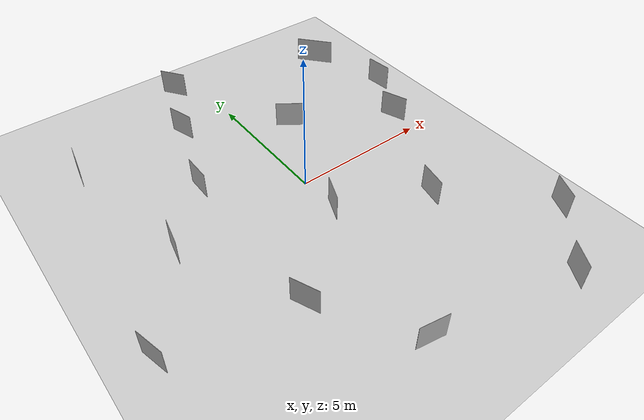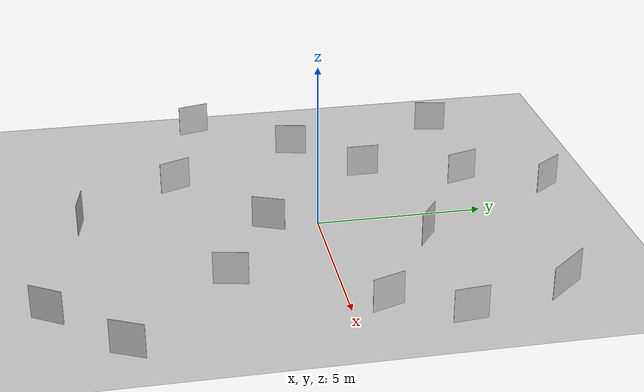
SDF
<sdf version="1.6">
 <world name="default">
  <light name="sun" type="directional">
   <pose>0 0 10 0 -0 0</pose>
   <diffuse>0.8 0.8 0.8 1</diffuse>
   <specular>0.1 0.1 0.1 1</specular>
   <attenuation>
    <range>1000</range>
    <constant>0.9</constant>
    <linear>0.01</linear>
    <quadratic>0.001</quadratic>
   </attenuation>
   <direction>-0.5 0.5 -1</direction>
  </light>
  <model name="ground_plane">
   <static>1</static>
   <link name="link">
    <collision name="collision">
     <geometry><plane><normal>0 0 1</normal><size>100 100</size></plane></geometry>
     <surface><friction><ode><mu>100</mu><mu2>50</mu2></ode></friction></surface>
    </collision>
    <visual name="visual">
     <cast_shadows>0</cast_shadows>
     <geometry><plane><normal>0 0 1</normal><size>100 100</size></plane></geometry>
     <material>
      <script><uri>file://media/materials/scripts/gazebo.material</uri><name>Gazebo/Grey</name></script>
     </material>
    </visual>
   </link>
  </model>
  <gravity>0 0 -9.8</gravity>
  <magnetic_field>6e-06 2.3e-05 -4.2e-05</magnetic_field>
  <atmosphere type="adiabatic"/>
  <physics name="default_physics" default="0" type="ode">
   <max_step_size>0.001</max_step_size>
   <real_time_factor>1</real_time_factor>
   <real_time_update_rate>1000</real_time_update_rate>
  </physics>
  <scene><ambient>0.4 0.4 0.4 1</ambient><background>0.7 0.7 0.7 1</background><shadows>1</shadows></scene>
  <spherical_coordinates>
   <surface_model>EARTH_WGS84</surface_model>
   <latitude_deg>0</latitude_deg>
   <longitude_deg>0</longitude_deg>
   <elevation>0</elevation>
   <heading_deg>0</heading_deg>
  </spherical_coordinates>
  <light name="sun_0" type="directional">
   <pose>8.42474 9.70985 10 0 -0 0</pose>
   <diffuse>0.8 0.8 0.8 1</diffuse>
   <specular>0.1 0.1 0.1 1</specular>
   <attenuation>
    <range>1000</range>
    <constant>0.9</constant>
    <linear>0.01</linear>
    <quadratic>0.001</quadratic>
   </attenuation>
   <direction>-0.5 0.5 -1</direction>
  </light>
  <model name="Apriltag36_11_00001">
   <link name="main">
    <visual name="main_Visual">
     <geometry><box><size>1 1 0.01</size></box></geometry>
     <material>
      <script>
       <uri>model://Apriltag36_11_00001/materials/scripts</uri>
       <uri>model://Apriltag36_11_00001/materials/textures</uri>
       <name>Apriltag36_11_00001</name>
      </script>
     </material>
    </visual>
    <collision name="main_collision"><geometry><box><size>1 1 0.01</size></box></geometry></collision>
   </link>
   <static>1</static>
   <pose>3 -3 0.5 3.14159 1.57079 2.94159</pose>
  </model>
  <model name="Apriltag36_11_00002">
   <link name="main">
    <visual name="main_Visual">
     <geometry><box><size>1 1 0.01</size></box></geometry>
     <material>
      <script>
       <uri>model://Apriltag36_11_00002/materials/scripts</uri>
       <uri>model://Apriltag36_11_00002/materials/textures</uri>
       <name>Apriltag36_11_00002</name>
      </script>
     </material>
    </visual>
    <collision name="main_collision"><geometry><box><size>1 1 0.01</size></box></geometry></collision>
   </link>
   <static>1</static>
   <pose>4 -8 0.5 3.09484 1.57079 2.54484</pose>
  </model>
  <model name="Apriltag36_11_00003">
   <link name="main">
    <visual name="main_Visual">
     <geometry><box><size>1 1 0.01</size></box></geometry>
     <material>
      <script>
       <uri>model://Apriltag36_11_00003/materials/scripts</uri>
       <uri>model://Apriltag36_11_00003/materials/textures</uri>
       <name>Apriltag36_11_00003</name>
      </script>
     </material>
    </visual>
    <collision name="main_collision"><geometry><box><size>1 1 0.01</size></box></geometry></collision>
   </link>
   <static>1</static>
   <pose>1.5 3 0.5 3.13024 1.57079 -2.20295</pose>
  </model>
  <model name="Apriltag36_11_00004">
   <link name="main">
    <visual name="main_Visual">
     <geometry><box><size>1 1 0.01</size></box></geometry>
     <material>
      <script>
       <uri>model://Apriltag36_11_00004/materials/scripts</uri>
       <uri>model://Apriltag36_11_00004/materials/textures</uri>
       <name>Apriltag36_11_00004</name>
      </script>
     </material>
    </visual>
    <collision name="main_collision"><geometry><box><size>1 1 0.01</size></box></geometry></collision>
   </link>
   <static>1</static>
   <pose>5 1 0.5 2.96659 1.57079 -2.96659</pose>
  </model>
  <model name="Apriltag36_11_00005">
   <link name="main">
    <visual name="main_Visual">
     <geometry><box><size>1 1 0.01</size></box></geometry>
     <material>
      <script>
       <uri>model://Apriltag36_11_00005/materials/scripts</uri>
       <uri>model://Apriltag36_11_00005/materials/textures</uri>
       <name>Apriltag36_11_00005</name>
      </script>
     </material>
    </visual>
    <collision name="main_collision"><geometry><box><size>1 1 0.01</size></box></geometry></collision>
   </link>
   <static>1</static>
   <pose>-3 -4 0.5 -3.01984 1.57079 -2.61984</pose>
  </model>
  <model name="Apriltag36_11_00006">
   <link name="main">
    <visual name="main_Visual">
     <geometry><box><size>1 1 0.01</size></box></geometry>
     <material>
      <script>
       <uri>model://Apriltag36_11_00006/materials/scripts</uri>
       <uri>model://Apriltag36_11_00006/materials/textures</uri>
       <name>Apriltag36_11_00006</name>
      </script>
     </material>
    </visual>
    <collision name="main_collision"><geometry><box><size>1 1 0.01</size></box></geometry></collision>
   </link>
   <static>1</static>
   <pose>-1 -7 0.5 -2.4794 1.57079 2.05352</pose>
  </model>
  <model name="Apriltag36_11_00007">
   <link name="main">
    <visual name="main_Visual">
     <geometry><box><size>1 1 0.01</size></box></geometry>
     <material>
      <script>
       <uri>model://Apriltag36_11_00007/materials/scripts</uri>
       <uri>model://Apriltag36_11_00007/materials/textures</uri>
       <name>Apriltag36_11_00007</name>
      </script>
     </material>
    </visual>
    <collision name="main_collision"><geometry><box><size>1 1 0.01</size></box></geometry></collision>
   </link>
   <static>1</static>
   <pose>-1 7.5 0.499999 1.5083 1.57079 -1.01834</pose>
  </model>
  <model name="Apriltag36_11_00008">
   <link name="main">
    <visual name="main_Visual">
     <geometry><box><size>1 1 0.01</size></box></geometry>
     <material>
      <script>
       <uri>model://Apriltag36_11_00008/materials/scripts</uri>
       <uri>model://Apriltag36_11_00008/materials/textures</uri>
       <name>Apriltag36_11_00008</name>
      </script>
     </material>
    </visual>
    <collision name="main_collision"><geometry><box><size>1 1 0.01</size></box></geometry></collision>
   </link>
   <static>1</static>
   <pose>6 -6 0.5 -2.91659 1.57079 2.91659</pose>
  </model>
  <model name="Apriltag36_11_00009">
   <link name="main">
    <visual name="main_Visual">
     <geometry><box><size>1 1.4625 0.01</size></box></geometry>
     <material>
      <script>
       <uri>model://Apriltag36_11_00009/materials/scripts</uri>
       <uri>model://Apriltag36_11_00009/materials/textures</uri>
       <name>Apriltag36_11_00009</name>
      </script>
     </material>
    </visual>
    <collision name="main_collision"><geometry><box><size>1 1.4625 0.01</size></box></geometry></collision>
   </link>
   <static>1</static>
   <pose>5 6 0.499994 3.03657 1.57079 -2.54661</pose>
  </model>
  <model name="Apriltag36_11_00010">
   <link name="main">
    <visual name="main_Visual">
     <geometry><box><size>1 1 0.01</size></box></geometry>
     <material>
      <script>
       <uri>model://Apriltag36_11_00010/materials/scripts</uri>
       <uri>model://Apriltag36_11_00010/materials/textures</uri>
       <name>Apriltag36_11_00010</name>
      </script>
     </material>
    </visual>
    <collision name="main_collision"><geometry><box><size>1 1 0.01</size></box></geometry></collision>
   </link>
   <static>1</static>
   <pose>6 3 0.500014 2.84661 1.57079 2.94661</pose>
  </model>
  <model name="Apriltag36_11_00011">
   <link name="main">
    <visual name="main_Visual">
     <geometry><box><size>1 1 0.01</size></box></geometry>
     <material>
      <script>
       <uri>model://Apriltag36_11_00011/materials/scripts</uri>
       <uri>model://Apriltag36_11_00011/materials/textures</uri>
       <name>Apriltag36_11_00011</name>
      </script>
     </material>
    </visual>
    <collision name="main_collision"><geometry><box><size>1 1 0.01</size></box></geometry></collision>
   </link>
   <static>1</static>
   <pose>-6 5 0.5 -3.14159 1.57079 2.94159</pose>
  </model>
  <model name="Apriltag36_11_00012">
   <link name="main">
    <visual name="main_Visual">
     <geometry><box><size>1 1 0.01</size></box></geometry>
     <material>
      <script>
       <uri>model://Apriltag36_11_00012/materials/scripts</uri>
       <uri>model://Apriltag36_11_00012/materials/textures</uri>
       <name>Apriltag36_11_00012</name>
      </script>
     </material>
    </visual>
    <collision name="main_collision"><geometry><box><size>1 1 0.01</size></box></geometry></collision>
   </link>
   <static>1</static>
   <pose>-2 5 0.5 -2.505 1.57079 -2.20739</pose>
  </model>
  <model name="Apriltag36_11_00013">
   <link name="main">
    <visual name="main_Visual">
     <geometry><box><size>1 1 0.01</size></box></geometry>
     <material>
      <script>
       <uri>model://Apriltag36_11_00013/materials/scripts</uri>
       <uri>model://Apriltag36_11_00013/materials/textures</uri>
       <name>Apriltag36_11_00013</name>
      </script>
     </material>
    </visual>
    <collision name="main_collision"><geometry><box><size>1 1 0.01</size></box></geometry></collision>
   </link>
   <static>1</static>
   <pose>0 -1.5 0.499944 -2.48032 1.57079 -2.87557</pose>
  </model>
  <model name="Apriltag36_11_00014">
   <link name="main">
    <visual name="main_Visual">
     <geometry><box><size>1 1 0.01</size></box></geometry>
     <material>
      <script>
       <uri>model://Apriltag36_11_00014/materials/scripts</uri>
       <uri>model://Apriltag36_11_00014/materials/textures</uri>
       <name>Apriltag36_11_00014</name>
      </script>
     </material>
    </visual>
    <collision name="main_collision"><geometry><box><size>1 1 0.01</size></box></geometry></collision>
   </link>
   <static>1</static>
   <pose>-7.2 -3 0.5 -3.02161 1.57079 -2.77161</pose>
  </model>
  <model name="Apriltag36_11_00015">
   <link name="main">
    <visual name="main_Visual">
     <geometry><box><size>1 1 0.01</size></box></geometry>
     <material>
      <script>
       <uri>model://Apriltag36_11_00015/materials/scripts</uri>
       <uri>model://Apriltag36_11_00015/materials/textures</uri>
       <name>Apriltag36_11_00015</name>
      </script>
     </material>
    </visual>
    <collision name="main_collision"><geometry><box><size>1 1 0.01</size></box></geometry></collision>
   </link>
   <static>1</static>
   <pose>-5 0 0.5 -3.04159 1.57079 3.04159</pose>
  </model>
  <model name="Apriltag36_11_00000_0">
   <link name="main">
    <visual name="main_Visual">
     <geometry><box><size>1 1 0.01</size></box></geometry>
     <material>
      <script>
       <uri>model://Apriltag36_11_00000/materials/scripts</uri>
       <uri>model://Apriltag36_11_00000/materials/textures</uri>
       <name>Apriltag36_11_00000</name>
      </script>
     </material>
    </visual>
    <collision name="main_collision"><geometry><box><size>1 1 0.01</size></box></geometry></collision>
   </link>
   <static>1</static>
   <pose>-3 2 0.5 0 1.57079 0</pose>
  </model>
 </world>
</sdf>
